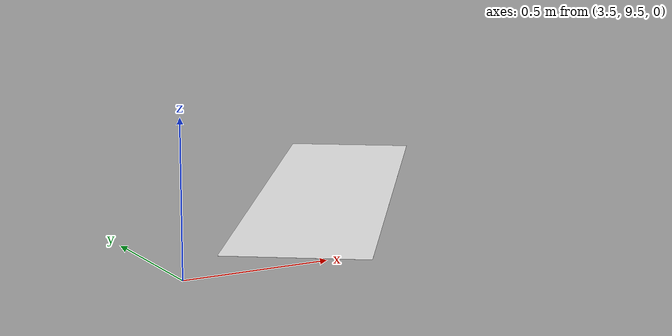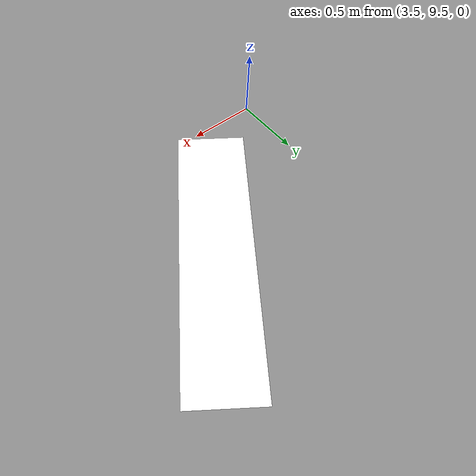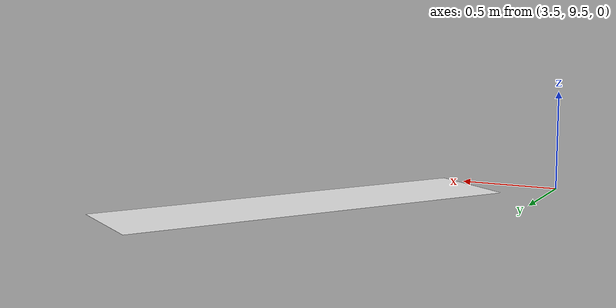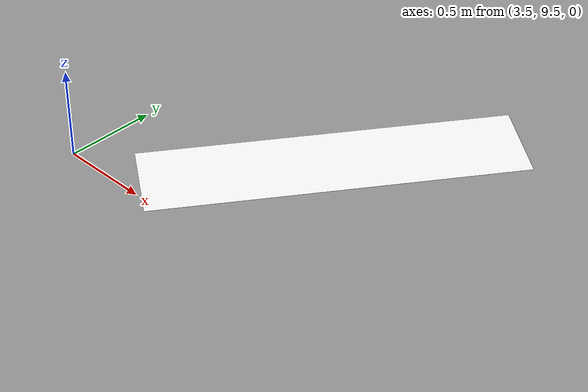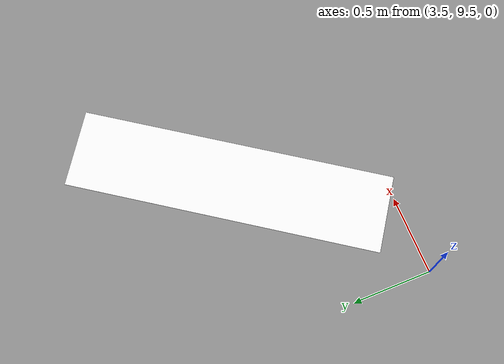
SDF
<sdf version='1.7'>
  <model name='default'>

    <model name='end_line'>
      <static>1</static>
      <link name='end_line_link'>
        <visual name='end_line_visual'>
          <geometry>
            <box>
              <size>0.5 2 0.00008</size>
            </box>
          </geometry>
          <material>
            <ambient>0.9 0.9 0.9 1</ambient>
              <diffuse>0.95 0.95 0.95 1</diffuse>
              <specular>0.1 0.1 0.1 1</specular>
          </material>
        </visual>
        <collision name='end_line_collision'>
          <geometry>
            <box>
              <size>0.5 2 0.00008</size>
            </box>
          </geometry>
          <max_contacts>10</max_contacts>
          <surface>
            <contact>
              <ode/>
            </contact>
            <bounce/>
            <friction>
              <torsional>
                <ode/>
              </torsional>
              <ode/>
            </friction>
          </surface>
        </collision>
        <self_collide>0</self_collide>
        <enable_wind>0</enable_wind>
        <kinematic>0</kinematic>
      </link>
      <pose>4.5 10.4 0 0 0 -0.6113</pose>
    </model>

</model>
</sdf>
